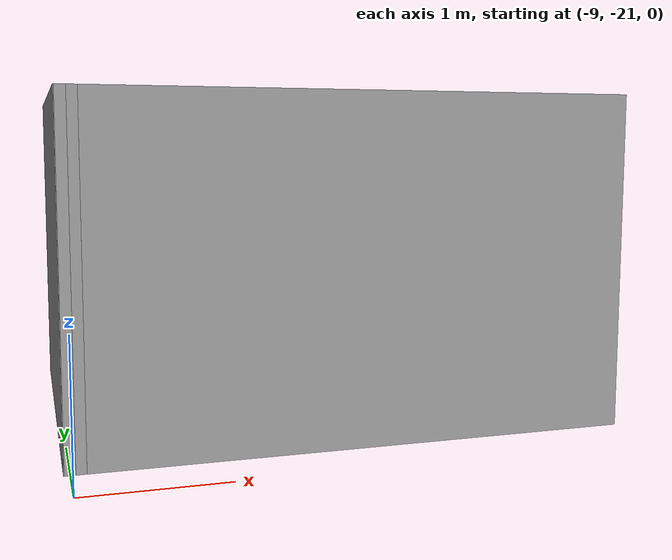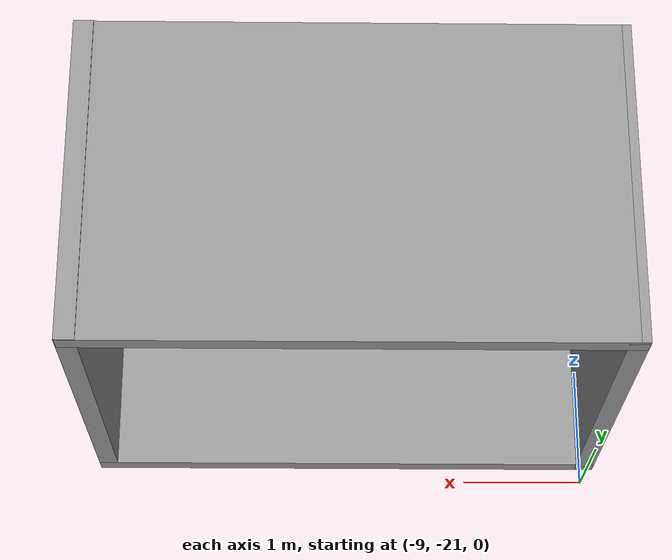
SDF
<?xml version='1.0'?>
<sdf version='1.6'>
  <model name='neighbour'>
    <pose frame=''>-6.98944 -19.0575 0 0 -0 0</pose>
    <link name='Wall_0'>
      <collision name='Wall_0_Collision'>
        <geometry>
          <box>
            <size>3.07416 0.15 2.5</size>
          </box>
        </geometry>
        <pose frame=''>0 0 1.25 0 -0 0</pose>
      </collision>
      <visual name='Wall_0_Visual'>
        <pose frame=''>0 0 1.25 0 -0 0</pose>
        <geometry>
          <box>
            <size>3.07416 0.15 2.5</size>
          </box>
        </geometry>
        <material>
          <script>
            <uri>file://media/materials/scripts/gazebo.material</uri>
            <name>Gazebo/Grey</name>
          </script>
          <ambient>1 1 1 1</ambient>
        </material>
        <meta>
          <layer>0</layer>
        </meta>
      </visual>
      <pose frame=''>-1.97832 -0.002472 0 0 0 -1.57249</pose>
    </link>
    <link name='Wall_2'>
      <collision name='Wall_2_Collision'>
        <geometry>
          <box>
            <size>4.09675 0.15 2.5</size>
          </box>
        </geometry>
        <pose frame=''>0 0 1.25 0 -0 0</pose>
      </collision>
      <visual name='Wall_2_Visual'>
        <pose frame=''>0 0 1.25 0 -0 0</pose>
        <geometry>
          <box>
            <size>4.09675 0.15 2.5</size>
          </box>
        </geometry>
        <material>
          <script>
            <uri>file://media/materials/scripts/gazebo.material</uri>
            <name>Gazebo/Grey</name>
          </script>
          <ambient>1 1 1 1</ambient>
        </material>
        <meta>
          <layer>0</layer>
        </meta>
      </visual>
      <pose frame=''>0.002471 1.45713 0 0 0 -0.001253</pose>
    </link>
    <link name='Wall_4'>
      <collision name='Wall_4_Collision'>
        <geometry>
          <box>
            <size>3.06922 0.15 2.5</size>
          </box>
        </geometry>
        <pose frame=''>0 0 1.25 0 -0 0</pose>
      </collision>
      <visual name='Wall_4_Visual'>
        <pose frame=''>0 0 1.25 0 -0 0</pose>
        <geometry>
          <box>
            <size>3.06922 0.15 2.5</size>
          </box>
        </geometry>
        <material>
          <script>
            <uri>file://media/materials/scripts/gazebo.material</uri>
            <name>Gazebo/Grey</name>
          </script>
          <ambient>1 1 1 1</ambient>
        </material>
        <meta>
          <layer>0</layer>
        </meta>
      </visual>
      <pose frame=''>1.97832 0.004944 0 0 0 -1.57249</pose>
    </link>
    <link name='Wall_5'>
      <collision name='Wall_5_Collision'>
        <geometry>
          <box>
            <size>4.10169 0.15 2.5</size>
          </box>
        </geometry>
        <pose frame=''>0 0 1.25 0 -0 0</pose>
      </collision>
      <visual name='Wall_5_Visual'>
        <pose frame=''>0 0 1.25 0 -0 0</pose>
        <geometry>
          <box>
            <size>4.10169 0.15 2.5</size>
          </box>
        </geometry>
        <material>
          <script>
            <uri>file://media/materials/scripts/gazebo.material</uri>
            <name>Gazebo/Grey</name>
          </script>
          <ambient>1 1 1 1</ambient>
        </material>
        <meta>
          <layer>0</layer>
        </meta>
      </visual>
      <pose frame=''>0 -1.46208 0 0 0 -3.14034</pose>
    </link>
    <static>1</static>
  </model>
</sdf>
